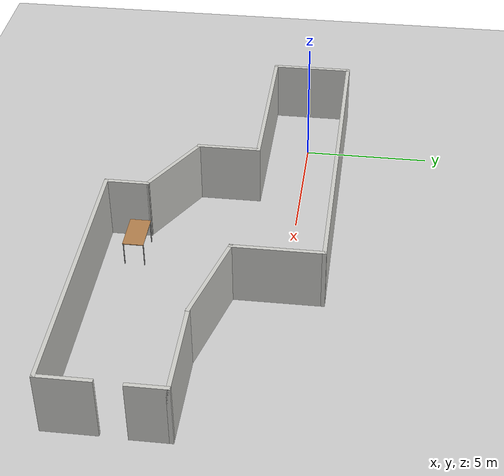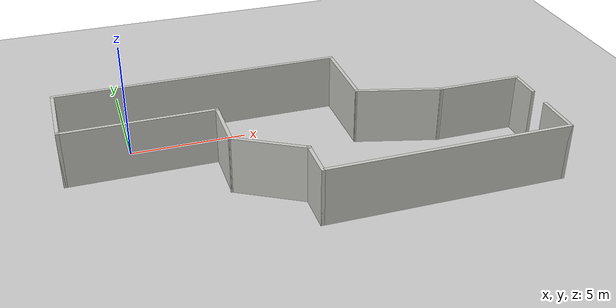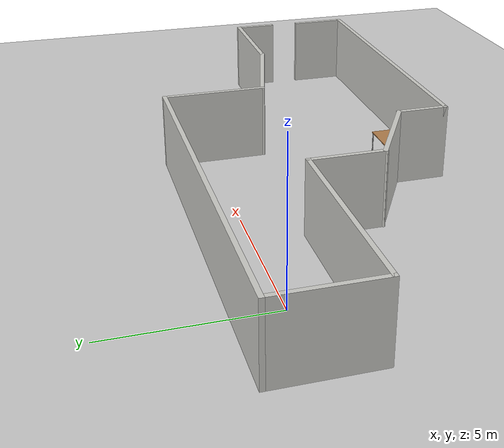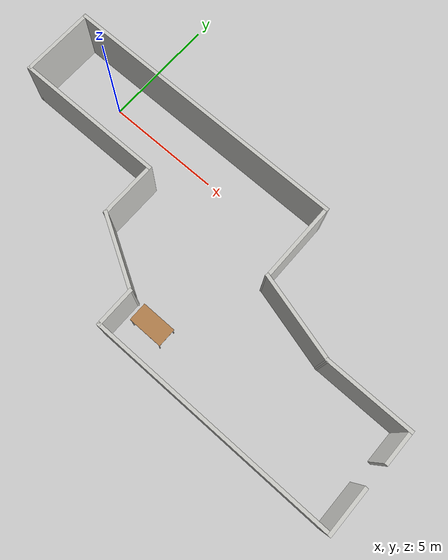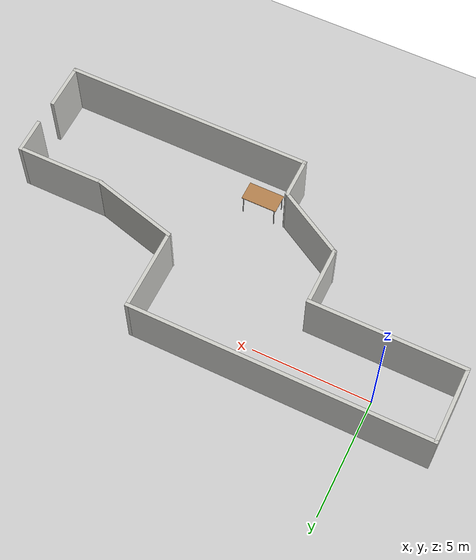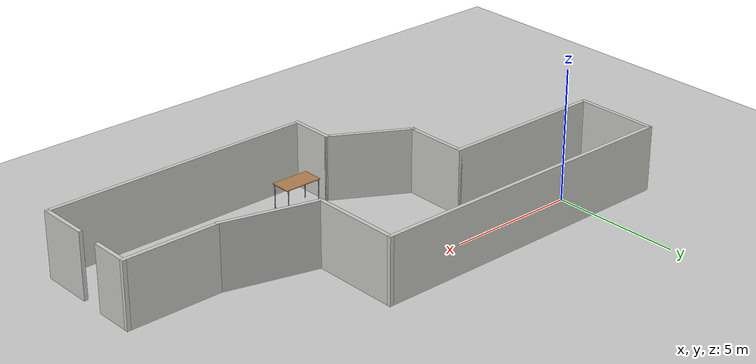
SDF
<sdf version="1.7">
 <world name="default">
  <light name="sun" type="directional">
   <pose>0 0 10 0 -0 0</pose>
   <diffuse>0.8 0.8 0.8 1</diffuse>
   <specular>0.2 0.2 0.2 1</specular>
   <attenuation>
    <range>1000</range>
    <constant>0.9</constant>
    <linear>0.01</linear>
    <quadratic>0.001</quadratic>
   </attenuation>
   <direction>-0.5 0.1 -0.9</direction>
   <spot><inner_angle>0</inner_angle><outer_angle>0</outer_angle><falloff>0</falloff></spot>
  </light>
  <model name="ground_plane">
   <static>1</static>
   <link name="link">
    <collision name="collision">
     <geometry><plane><normal>0 0 1</normal><size>100 100</size></plane></geometry>
     <surface>
      <contact><collide_bitmask>65535</collide_bitmask></contact>
      <friction><ode><mu>100</mu><mu2>50</mu2></ode></friction>
     </surface>
    </collision>
    <visual name="visual">
     <cast_shadows>0</cast_shadows>
     <geometry><plane><normal>0 0 1</normal><size>100 100</size></plane></geometry>
     <material>
      <script><uri>file://media/materials/scripts/gazebo.material</uri><name>Gazebo/Grey</name></script>
     </material>
    </visual>
   </link>
  </model>
  <gravity>0 0 -9.8</gravity>
  <magnetic_field>6e-06 2.3e-05 -4.2e-05</magnetic_field>
  <atmosphere type="adiabatic"/>
  <physics type="ode">
   <max_step_size>0.001</max_step_size>
   <real_time_factor>1</real_time_factor>
   <real_time_update_rate>1000</real_time_update_rate>
  </physics>
  <scene><ambient>0.4 0.4 0.4 1</ambient><background>0.7 0.7 0.7 1</background><shadows>1</shadows></scene>
  <spherical_coordinates>
   <surface_model>EARTH_WGS84</surface_model>
   <latitude_deg>0</latitude_deg>
   <longitude_deg>0</longitude_deg>
   <elevation>0</elevation>
   <heading_deg>0</heading_deg>
  </spherical_coordinates>
  <model name="z-shaped-room">
   <pose>6.87306 -2.86722 0 0 -0 0</pose>
   <link name="Wall_0">
    <collision name="Wall_0_Collision">
     <geometry><box><size>1.5 0.15 2.5</size></box></geometry>
     <pose>0 0 1.25 0 -0 0</pose>
    </collision>
    <visual name="Wall_0_Visual">
     <pose>0 0 1.25 0 -0 0</pose>
     <geometry><box><size>1.5 0.15 2.5</size></box></geometry>
     <material>
      <script><uri>file://media/materials/scripts/gazebo.material</uri><name>Gazebo/CeilingTiled</name></script>
      <ambient>1 1 1 1</ambient>
     </material>
     <meta><layer>0</layer></meta>
    </visual>
    <pose>9.71367 -0.656749 0 0 -0 1.5708</pose>
   </link>
   <link name="Wall_1">
    <collision name="Wall_1_Collision">
     <geometry><box><size>3.75 0.15 2.5</size></box></geometry>
     <pose>0 0 1.25 0 -0 0</pose>
    </collision>
    <visual name="Wall_1_Visual">
     <pose>0 0 1.25 0 -0 0</pose>
     <geometry><box><size>3.75 0.15 2.5</size></box></geometry>
     <material>
      <script><uri>file://media/materials/scripts/gazebo.material</uri><name>Gazebo/CeilingTiled</name></script>
      <ambient>1 1 1 1</ambient>
     </material>
     <meta><layer>0</layer></meta>
    </visual>
    <pose>7.91367 0.018251 0 0 -0 3.14159</pose>
   </link>
   <link name="Wall_10">
    <collision name="Wall_10_Collision">
     <geometry><box><size>10.5 0.15 2.5</size></box></geometry>
     <pose>0 0 1.25 0 -0 0</pose>
    </collision>
    <visual name="Wall_10_Visual">
     <pose>0 0 1.25 0 -0 0</pose>
     <geometry><box><size>10.5 0.15 2.5</size></box></geometry>
     <material>
      <script><uri>file://media/materials/scripts/gazebo.material</uri><name>Gazebo/CeilingTiled</name></script>
      <ambient>1 1 1 1</ambient>
     </material>
     <meta><layer>0</layer></meta>
    </visual>
    <pose>4.49601 -4.3 0 0 -0 0</pose>
   </link>
   <link name="Wall_11">
    <collision name="Wall_11_Collision">
     <geometry><box><size>2 0.15 2.5</size></box></geometry>
     <pose>0 0 1.25 0 -0 0</pose>
    </collision>
    <visual name="Wall_11_Visual">
     <pose>0 0 1.25 0 -0 0</pose>
     <geometry><box><size>2 0.15 2.5</size></box></geometry>
     <material>
      <script><uri>file://media/materials/scripts/gazebo.material</uri><name>Gazebo/CeilingTiled</name></script>
      <ambient>1 1 1 1</ambient>
     </material>
     <meta><layer>0</layer></meta>
    </visual>
    <pose>9.67101 -3.375 0 0 -0 1.5708</pose>
   </link>
   <link name="Wall_2">
    <collision name="Wall_2_Collision">
     <geometry><box><size>3.75 0.15 2.5</size></box></geometry>
     <pose>0 0 1.25 0 -0 0</pose>
    </collision>
    <visual name="Wall_2_Visual">
     <pose>0 0 1.25 0 -0 0</pose>
     <geometry><box><size>3.75 0.15 2.5</size></box></geometry>
     <material>
      <script><uri>file://media/materials/scripts/gazebo.material</uri><name>Gazebo/CeilingTiled</name></script>
      <ambient>1 1 1 1</ambient>
     </material>
     <meta><layer>0</layer></meta>
    </visual>
    <pose>4.375 0.484126 0 0 -0 2.87979</pose>
   </link>
   <link name="Wall_3">
    <collision name="Wall_3_Collision">
     <geometry><box><size>3.5 0.15 2.5</size></box></geometry>
     <pose>0 0 1.25 0 -0 0</pose>
    </collision>
    <visual name="Wall_3_Visual">
     <pose>0 0 1.25 0 -0 0</pose>
     <geometry><box><size>3.5 0.15 2.5</size></box></geometry>
     <material>
      <script><uri>file://media/materials/scripts/gazebo.material</uri><name>Gazebo/CeilingTiled</name></script>
      <ambient>1 1 1 1</ambient>
     </material>
     <meta><layer>0</layer></meta>
    </visual>
    <pose>2.63633 2.625 0 0 -0 1.5708</pose>
   </link>
   <link name="Wall_4">
    <collision name="Wall_4_Collision">
     <geometry><box><size>12.5 0.15 2.5</size></box></geometry>
     <pose>0 0 1.25 0 -0 0</pose>
    </collision>
    <visual name="Wall_4_Visual">
     <pose>0 0 1.25 0 -0 0</pose>
     <geometry><box><size>12.5 0.15 2.5</size></box></geometry>
     <material>
      <script><uri>file://media/materials/scripts/gazebo.material</uri><name>Gazebo/CeilingTiled</name></script>
      <ambient>1 1 1 1</ambient>
     </material>
     <meta><layer>0</layer></meta>
    </visual>
    <pose>-3.53867 4.3 0 0 -0 3.14159</pose>
   </link>
   <link name="Wall_5">
    <collision name="Wall_5_Collision">
     <geometry><box><size>3.25 0.15 2.5</size></box></geometry>
     <pose>0 0 1.25 0 -0 0</pose>
    </collision>
    <visual name="Wall_5_Visual">
     <pose>0 0 1.25 0 -0 0</pose>
     <geometry><box><size>3.25 0.15 2.5</size></box></geometry>
     <material>
      <script><uri>file://media/materials/scripts/gazebo.material</uri><name>Gazebo/CeilingTiled</name></script>
      <ambient>1 1 1 1</ambient>
     </material>
     <meta><layer>0</layer></meta>
    </visual>
    <pose>-9.71367 2.75 0 0 -0 -1.5708</pose>
   </link>
   <link name="Wall_6">
    <collision name="Wall_6_Collision">
     <geometry><box><size>6.5 0.15 2.5</size></box></geometry>
     <pose>0 0 1.25 0 -0 0</pose>
    </collision>
    <visual name="Wall_6_Visual">
     <pose>0 0 1.25 0 -0 0</pose>
     <geometry><box><size>6.5 0.15 2.5</size></box></geometry>
     <material>
      <script><uri>file://media/materials/scripts/gazebo.material</uri><name>Gazebo/CeilingTiled</name></script>
      <ambient>1 1 1 1</ambient>
     </material>
     <meta><layer>0</layer></meta>
    </visual>
    <pose>-6.53867 1.2 0 0 -0 0</pose>
   </link>
   <link name="Wall_7">
    <collision name="Wall_7_Collision">
     <geometry><box><size>2.5 0.15 2.5</size></box></geometry>
     <pose>0 0 1.25 0 -0 0</pose>
    </collision>
    <visual name="Wall_7_Visual">
     <pose>0 0 1.25 0 -0 0</pose>
     <geometry><box><size>2.5 0.15 2.5</size></box></geometry>
     <material>
      <script><uri>file://media/materials/scripts/gazebo.material</uri><name>Gazebo/CeilingTiled</name></script>
      <ambient>1 1 1 1</ambient>
     </material>
     <meta><layer>0</layer></meta>
    </visual>
    <pose>-3.36367 0.025 0 0 -0 -1.5708</pose>
   </link>
   <link name="Wall_8">
    <collision name="Wall_8_Collision">
     <geometry><box><size>3.25 0.15 2.5</size></box></geometry>
     <pose>0 0 1.25 0 -0 0</pose>
    </collision>
    <visual name="Wall_8_Visual">
     <pose>0 0 1.25 0 -0 0</pose>
     <geometry><box><size>3.25 0.15 2.5</size></box></geometry>
     <material>
      <script><uri>file://media/materials/scripts/gazebo.material</uri><name>Gazebo/CeilingTiled</name></script>
      <ambient>1 1 1 1</ambient>
     </material>
     <meta><layer>0</layer></meta>
    </visual>
    <pose>-2.02133 -1.925 0 0 -0 -0.523599</pose>
   </link>
   <link name="Wall_9">
    <collision name="Wall_9_Collision">
     <geometry><box><size>1.75 0.15 2.5</size></box></geometry>
     <pose>0 0 1.25 0 -0 0</pose>
    </collision>
    <visual name="Wall_9_Visual">
     <pose>0 0 1.25 0 -0 0</pose>
     <geometry><box><size>1.75 0.15 2.5</size></box></geometry>
     <material>
      <script><uri>file://media/materials/scripts/gazebo.material</uri><name>Gazebo/CeilingTiled</name></script>
      <ambient>1 1 1 1</ambient>
     </material>
     <meta><layer>0</layer></meta>
    </visual>
    <pose>-0.678988 -3.5 0 0 -0 -1.5708</pose>
   </link>
   <static>1</static>
  </model>
  <model name="table">
   <static>1</static>
   <link name="link">
    <collision name="surface">
     <pose>0 0 1 0 -0 0</pose>
     <geometry><box><size>1.5 0.8 0.03</size></box></geometry>
     <surface><friction><ode><mu>0.6</mu><mu2>0.6</mu2></ode></friction></surface>
    </collision>
    <visual name="visual1">
     <pose>0 0 1 0 -0 0</pose>
     <geometry><box><size>1.5 0.8 0.03</size></box></geometry>
     <material>
      <script><uri>file://media/materials/scripts/gazebo.material</uri><name>Gazebo/Wood</name></script>
     </material>
    </visual>
    <collision name="front_left_leg">
     <pose>0.68 0.38 0.5 0 -0 0</pose>
     <geometry><cylinder><radius>0.02</radius><length>1</length></cylinder></geometry>
    </collision>
    <visual name="front_left_leg">
     <pose>0.68 0.38 0.5 0 -0 0</pose>
     <geometry><cylinder><radius>0.02</radius><length>1</length></cylinder></geometry>
     <material>
      <script><uri>file://media/materials/scripts/gazebo.material</uri><name>Gazebo/Grey</name></script>
     </material>
    </visual>
    <collision name="front_right_leg">
     <pose>0.68 -0.38 0.5 0 -0 0</pose>
     <geometry><cylinder><radius>0.02</radius><length>1</length></cylinder></geometry>
    </collision>
    <visual name="front_right_leg">
     <pose>0.68 -0.38 0.5 0 -0 0</pose>
     <geometry><cylinder><radius>0.02</radius><length>1</length></cylinder></geometry>
     <material>
      <script><uri>file://media/materials/scripts/gazebo.material</uri><name>Gazebo/Grey</name></script>
     </material>
    </visual>
    <collision name="back_right_leg">
     <pose>-0.68 -0.38 0.5 0 -0 0</pose>
     <geometry><cylinder><radius>0.02</radius><length>1</length></cylinder></geometry>
    </collision>
    <visual name="back_right_leg">
     <pose>-0.68 -0.38 0.5 0 -0 0</pose>
     <geometry><cylinder><radius>0.02</radius><length>1</length></cylinder></geometry>
     <material>
      <script><uri>file://media/materials/scripts/gazebo.material</uri><name>Gazebo/Grey</name></script>
     </material>
    </visual>
    <collision name="back_left_leg">
     <pose>-0.68 0.38 0.5 0 -0 0</pose>
     <geometry><cylinder><radius>0.02</radius><length>1</length></cylinder></geometry>
    </collision>
    <visual name="back_left_leg">
     <pose>-0.68 0.38 0.5 0 -0 0</pose>
     <geometry><cylinder><radius>0.02</radius><length>1</length></cylinder></geometry>
     <material>
      <script><uri>file://media/materials/scripts/gazebo.material</uri><name>Gazebo/Grey</name></script>
     </material>
    </visual>
   </link>
   <pose>7.35254 -5.84654 0 0 -0 0</pose>
  </model>
 </world>
</sdf>
